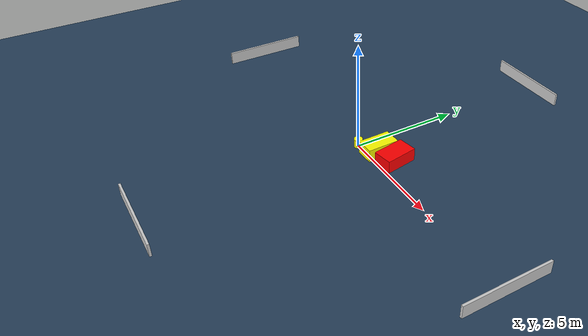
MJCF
<?xml version="1.0" ?>
<mujoco model="generated_environment">
  <option timestep="0.01" integrator="RK4" cone="elliptic"/>
  <default>
    <geom density="1"/>
  </default>
  <asset>
    <texture builtin="gradient" height="3072" name="skybox" rgb1="0.3 0.5 0.7" rgb2="0 0 0" type="skybox" width="512"/>
    <texture builtin="checker" height="300" name="groundplane" rgb1="0.2 0.3 0.4" rgb2="0.1 0.2 0.3" type="2d" width="300"/>
    <material name="groundplane" reflectance="0.2" texrepeat="5 5" texture="groundplane"/>
  </asset>
  <worldbody>
    <light dir="0 0 -1" directional="true" pos="0 0 1.5"/>
    <geom condim="3" friction="0.5 0.005 0.001" material="groundplane" name="floor" pos="0 0 0" size="0 0 0.05" type="plane"/>
    <body name="walls">
      <geom name="wall_1" condim="4" pos="-10.0 0.0 0.3" rgba="0.800000011920929 0.800000011920929 0.800000011920929 1.0" size="0.05 2.0 0.3" type="box"/>
      <geom name="wall_2" condim="4" pos="10.0 0.0 0.3" rgba="0.800000011920929 0.800000011920929 0.800000011920929 1.0" size="0.05 2.0 0.3" type="box"/>
      <geom name="wall_3" condim="4" pos="0.0 -10.0 0.3" rgba="0.800000011920929 0.800000011920929 0.800000011920929 1.0" size="2.0 0.05 0.3" type="box"/>
      <geom name="wall_4" condim="4" pos="0.0 10.0 0.3" rgba="0.800000011920929 0.800000011920929 0.800000011920929 1.0" size="2.0 0.05 0.3" type="box"/>
    </body>
    <body name="robot">
      <joint name="joint_x" type="slide" pos="0 0 0" axis="1 0 0"/>
      <joint name="joint_y" type="slide" pos="0 0 0" axis="0 1 0"/>
      <geom name="robot" type="cylinder" pos="0.0 0.0 0.2" size="0.2 0.2 0.0" mass="5.0" friction="1.0 0.005 0.0001" condim="4" rgba="1.0 1.0 0.0 1.0"/>
    </body>
    <body name="obstacle_1_movable">
      <geom name="obstacle_1_movable" condim="4" pos="0.8373264269425691 0.5346017567184932 0.3" euler="0 0 90.8174417209397" friction="0.0 0.005 0.001" rgba="1.0 1.0 0.0 1.0" size="0.7407128114529848 0.4189533391885998 0.3" type="box" mass="0.1"/>
      <joint type="free"/>
    </body>
    <body name="obstacle_2_static">
      <geom name="obstacle_2_static" condim="4" pos="1.7940396750991672 0.7669925093626105 0.3" euler="0 0 189.71846054884494" friction="0.0 0.005 0.001" rgba="1.0 0.0 0.0 1.0" size="0.45143067378075247 0.7449623236613354 0.3" type="box"/>
    </body>
  </worldbody>
  <actuator>
    <motor name="actuator_x" joint="joint_x" gear="1" ctrlrange="-1 1"/>
    <motor name="actuator_y" joint="joint_y" gear="1" ctrlrange="-1 1"/>
  </actuator>
</mujoco>
